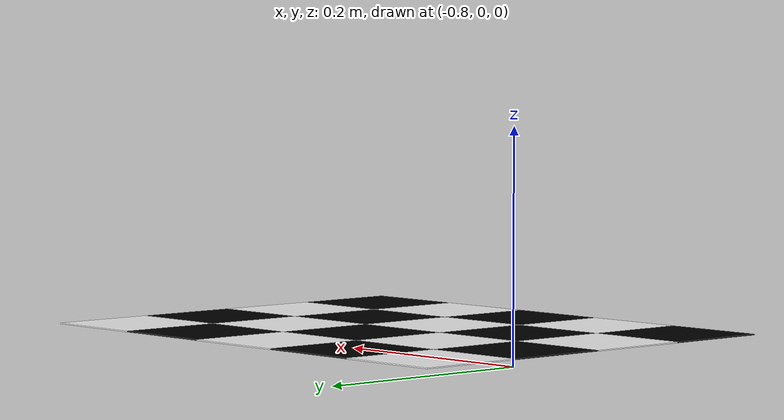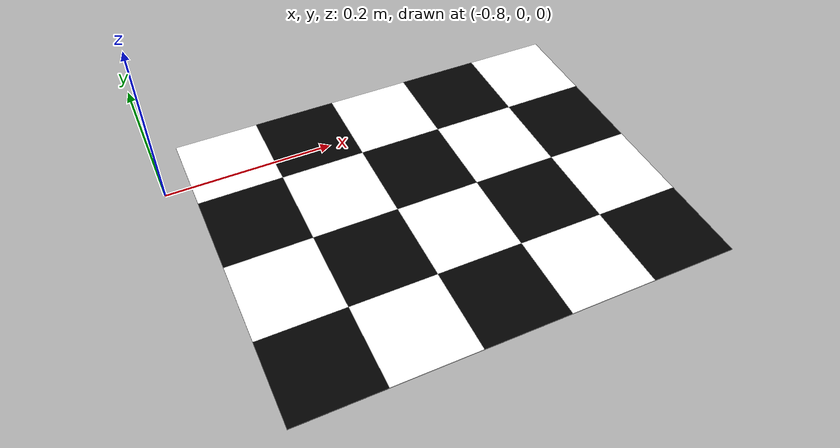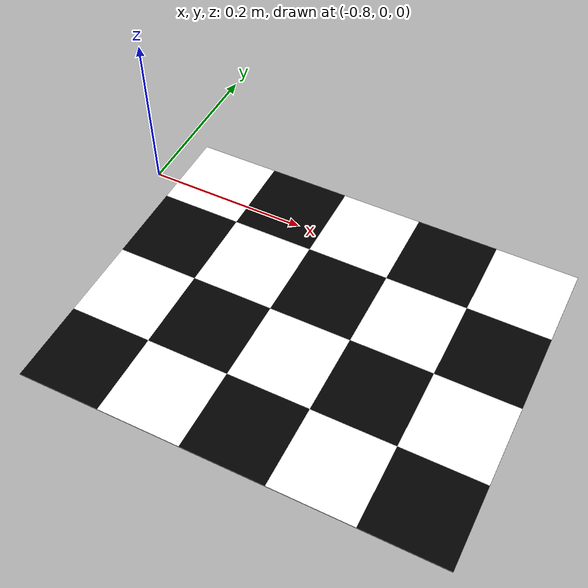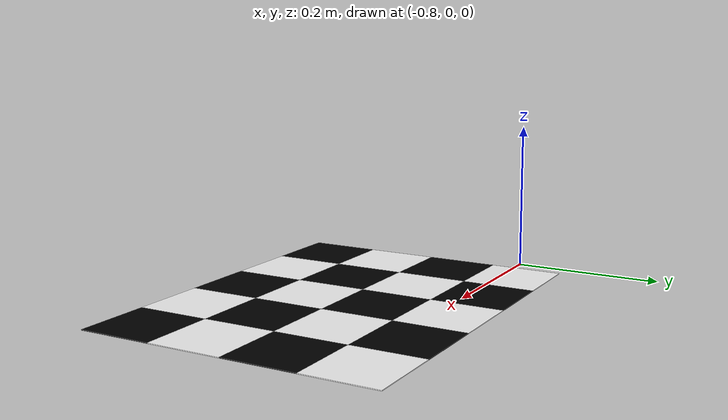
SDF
<sdf version="1.6">
  <model name="calibration_checkerboard">
    <static>true</static>
    <pose>0 0 0.002 0 0 0</pose>
    <link name="board_link">
      <visual name="sq_0_0">
        <pose>-0.7200 -0.2800 0 0 0 0</pose>
        <geometry><box><size>0.1 0.1 0.001</size></box></geometry>
        <material>
          <ambient>0 0 0 1</ambient>
          <diffuse>0 0 0 1</diffuse>
          <specular>0 0 0 1</specular>
          <emissive>0 0 0 1</emissive>
        </material>
      </visual>
      <visual name="sq_0_1">
        <pose>-0.6200 -0.2800 0 0 0 0</pose>
        <geometry><box><size>0.1 0.1 0.001</size></box></geometry>
        <material>
          <ambient>1 1 1 1</ambient>
          <diffuse>1 1 1 1</diffuse>
          <specular>0 0 0 1</specular>
          <emissive>0 0 0 1</emissive>
        </material>
      </visual>
      <visual name="sq_0_2">
        <pose>-0.5200 -0.2800 0 0 0 0</pose>
        <geometry><box><size>0.1 0.1 0.001</size></box></geometry>
        <material>
          <ambient>0 0 0 1</ambient>
          <diffuse>0 0 0 1</diffuse>
          <specular>0 0 0 1</specular>
          <emissive>0 0 0 1</emissive>
        </material>
      </visual>
      <visual name="sq_0_3">
        <pose>-0.4200 -0.2800 0 0 0 0</pose>
        <geometry><box><size>0.1 0.1 0.001</size></box></geometry>
        <material>
          <ambient>1 1 1 1</ambient>
          <diffuse>1 1 1 1</diffuse>
          <specular>0 0 0 1</specular>
          <emissive>0 0 0 1</emissive>
        </material>
      </visual>
      <visual name="sq_0_4">
        <pose>-0.3200 -0.2800 0 0 0 0</pose>
        <geometry><box><size>0.1 0.1 0.001</size></box></geometry>
        <material>
          <ambient>0 0 0 1</ambient>
          <diffuse>0 0 0 1</diffuse>
          <specular>0 0 0 1</specular>
          <emissive>0 0 0 1</emissive>
        </material>
      </visual>
      <visual name="sq_1_0">
        <pose>-0.7200 -0.1800 0 0 0 0</pose>
        <geometry><box><size>0.1 0.1 0.001</size></box></geometry>
        <material>
          <ambient>1 1 1 1</ambient>
          <diffuse>1 1 1 1</diffuse>
          <specular>0 0 0 1</specular>
          <emissive>0 0 0 1</emissive>
        </material>
      </visual>
      <visual name="sq_1_1">
        <pose>-0.6200 -0.1800 0 0 0 0</pose>
        <geometry><box><size>0.1 0.1 0.001</size></box></geometry>
        <material>
          <ambient>0 0 0 1</ambient>
          <diffuse>0 0 0 1</diffuse>
          <specular>0 0 0 1</specular>
          <emissive>0 0 0 1</emissive>
        </material>
      </visual>
      <visual name="sq_1_2">
        <pose>-0.5200 -0.1800 0 0 0 0</pose>
        <geometry><box><size>0.1 0.1 0.001</size></box></geometry>
        <material>
          <ambient>1 1 1 1</ambient>
          <diffuse>1 1 1 1</diffuse>
          <specular>0 0 0 1</specular>
          <emissive>0 0 0 1</emissive>
        </material>
      </visual>
      <visual name="sq_1_3">
        <pose>-0.4200 -0.1800 0 0 0 0</pose>
        <geometry><box><size>0.1 0.1 0.001</size></box></geometry>
        <material>
          <ambient>0 0 0 1</ambient>
          <diffuse>0 0 0 1</diffuse>
          <specular>0 0 0 1</specular>
          <emissive>0 0 0 1</emissive>
        </material>
      </visual>
      <visual name="sq_1_4">
        <pose>-0.3200 -0.1800 0 0 0 0</pose>
        <geometry><box><size>0.1 0.1 0.001</size></box></geometry>
        <material>
          <ambient>1 1 1 1</ambient>
          <diffuse>1 1 1 1</diffuse>
          <specular>0 0 0 1</specular>
          <emissive>0 0 0 1</emissive>
        </material>
      </visual>
      <visual name="sq_2_0">
        <pose>-0.7200 -0.0800 0 0 0 0</pose>
        <geometry><box><size>0.1 0.1 0.001</size></box></geometry>
        <material>
          <ambient>0 0 0 1</ambient>
          <diffuse>0 0 0 1</diffuse>
          <specular>0 0 0 1</specular>
          <emissive>0 0 0 1</emissive>
        </material>
      </visual>
      <visual name="sq_2_1">
        <pose>-0.6200 -0.0800 0 0 0 0</pose>
        <geometry><box><size>0.1 0.1 0.001</size></box></geometry>
        <material>
          <ambient>1 1 1 1</ambient>
          <diffuse>1 1 1 1</diffuse>
          <specular>0 0 0 1</specular>
          <emissive>0 0 0 1</emissive>
        </material>
      </visual>
      <visual name="sq_2_2">
        <pose>-0.5200 -0.0800 0 0 0 0</pose>
        <geometry><box><size>0.1 0.1 0.001</size></box></geometry>
        <material>
          <ambient>0 0 0 1</ambient>
          <diffuse>0 0 0 1</diffuse>
          <specular>0 0 0 1</specular>
          <emissive>0 0 0 1</emissive>
        </material>
      </visual>
      <visual name="sq_2_3">
        <pose>-0.4200 -0.0800 0 0 0 0</pose>
        <geometry><box><size>0.1 0.1 0.001</size></box></geometry>
        <material>
          <ambient>1 1 1 1</ambient>
          <diffuse>1 1 1 1</diffuse>
          <specular>0 0 0 1</specular>
          <emissive>0 0 0 1</emissive>
        </material>
      </visual>
      <visual name="sq_2_4">
        <pose>-0.3200 -0.0800 0 0 0 0</pose>
        <geometry><box><size>0.1 0.1 0.001</size></box></geometry>
        <material>
          <ambient>0 0 0 1</ambient>
          <diffuse>0 0 0 1</diffuse>
          <specular>0 0 0 1</specular>
          <emissive>0 0 0 1</emissive>
        </material>
      </visual>
      <visual name="sq_3_0">
        <pose>-0.7200 0.0200 0 0 0 0</pose>
        <geometry><box><size>0.1 0.1 0.001</size></box></geometry>
        <material>
          <ambient>1 1 1 1</ambient>
          <diffuse>1 1 1 1</diffuse>
          <specular>0 0 0 1</specular>
          <emissive>0 0 0 1</emissive>
        </material>
      </visual>
      <visual name="sq_3_1">
        <pose>-0.6200 0.0200 0 0 0 0</pose>
        <geometry><box><size>0.1 0.1 0.001</size></box></geometry>
        <material>
          <ambient>0 0 0 1</ambient>
          <diffuse>0 0 0 1</diffuse>
          <specular>0 0 0 1</specular>
          <emissive>0 0 0 1</emissive>
        </material>
      </visual>
      <visual name="sq_3_2">
        <pose>-0.5200 0.0200 0 0 0 0</pose>
        <geometry><box><size>0.1 0.1 0.001</size></box></geometry>
        <material>
          <ambient>1 1 1 1</ambient>
          <diffuse>1 1 1 1</diffuse>
          <specular>0 0 0 1</specular>
          <emissive>0 0 0 1</emissive>
        </material>
      </visual>
      <visual name="sq_3_3">
        <pose>-0.4200 0.0200 0 0 0 0</pose>
        <geometry><box><size>0.1 0.1 0.001</size></box></geometry>
        <material>
          <ambient>0 0 0 1</ambient>
          <diffuse>0 0 0 1</diffuse>
          <specular>0 0 0 1</specular>
          <emissive>0 0 0 1</emissive>
        </material>
      </visual>
      <visual name="sq_3_4">
        <pose>-0.3200 0.0200 0 0 0 0</pose>
        <geometry><box><size>0.1 0.1 0.001</size></box></geometry>
        <material>
          <ambient>1 1 1 1</ambient>
          <diffuse>1 1 1 1</diffuse>
          <specular>0 0 0 1</specular>
          <emissive>0 0 0 1</emissive>
        </material>
      </visual>
    </link>
  </model>
</sdf>
